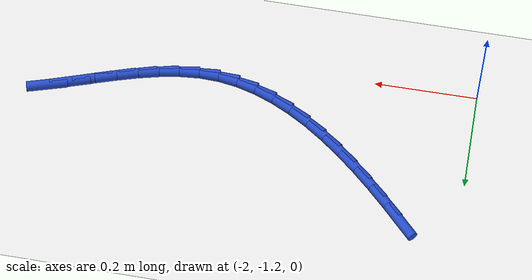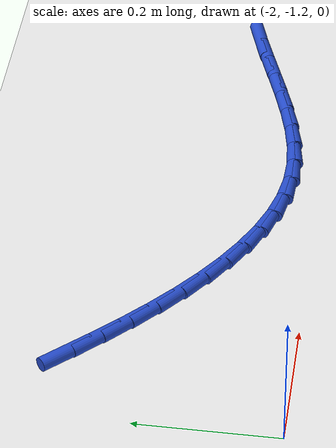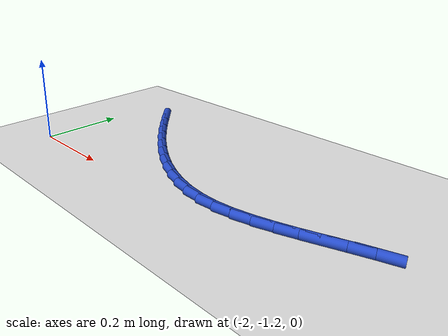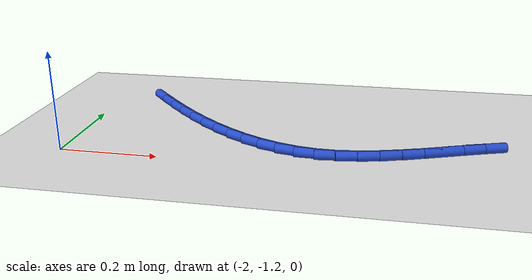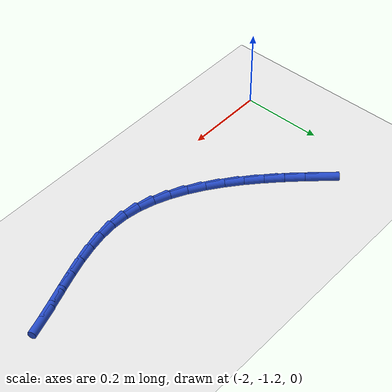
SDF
<sdf version="1.6">
 <world name="default">
  <model name="ground_plane">
   <static>1</static>
   <link name="link">
    <collision name="collision">
     <geometry><plane><normal>0 0 1</normal><size>100 100</size></plane></geometry>
     <surface><friction><ode><mu>100</mu><mu2>50</mu2></ode></friction></surface>
    </collision>
    <visual name="visual">
     <cast_shadows>0</cast_shadows>
     <geometry><plane><normal>0 0 1</normal><size>100 100</size></plane></geometry>
     <material>
      <script><uri>file://media/materials/scripts/gazebo.material</uri><name>Gazebo/WhiteGlow</name></script>
     </material>
    </visual>
   </link>
  </model>
  <model name="line">
   <link name="link_100">
    <pose>-1.8908189197244087 -0.8976447744286477 0.01 0 1.57 -0.8189023400713871</pose>
    <collision name="collision">
     <geometry><cylinder><radius>0.01</radius><length>0.08</length></cylinder></geometry>
    </collision>
    <visual name="visual">
     <material>
      <script><name>Gazebo/Blue</name><uri>file://media/materials/scripts/gazebo.material</uri></script>
     </material>
     <geometry><cylinder><radius>0.01</radius><length>0.08</length></cylinder></geometry>
    </visual>
   </link>
   <link name="link_101">
    <pose>-1.8580120726669724 -0.9327270418444495 0.01 0 1.57 -0.79292820354876</pose>
    <collision name="collision">
     <geometry><cylinder><radius>0.01</radius><length>0.08</length></cylinder></geometry>
    </collision>
    <visual name="visual">
     <material>
      <script><name>Gazebo/Blue</name><uri>file://media/materials/scripts/gazebo.material</uri></script>
     </material>
     <geometry><cylinder><radius>0.01</radius><length>0.08</length></cylinder></geometry>
    </visual>
   </link>
   <link name="link_102">
    <pose>-1.8246435972108055 -0.966601871659604 0.01 0 1.57 -0.7606506586651425</pose>
    <collision name="collision">
     <geometry><cylinder><radius>0.01</radius><length>0.08</length></cylinder></geometry>
    </collision>
    <visual name="visual">
     <material>
      <script><name>Gazebo/Blue</name><uri>file://media/materials/scripts/gazebo.material</uri></script>
     </material>
     <geometry><cylinder><radius>0.01</radius><length>0.08</length></cylinder></geometry>
    </visual>
   </link>
   <link name="link_103">
    <pose>-1.7907115147757082 -0.998894717705953 0.01 0 1.57 -0.7213013544961617</pose>
    <collision name="collision">
     <geometry><cylinder><radius>0.01</radius><length>0.08</length></cylinder></geometry>
    </collision>
    <visual name="visual">
     <material>
      <script><name>Gazebo/Blue</name><uri>file://media/materials/scripts/gazebo.material</uri></script>
     </material>
     <geometry><cylinder><radius>0.01</radius><length>0.08</length></cylinder></geometry>
    </visual>
   </link>
   <link name="link_104">
    <pose>-1.7562138467814827 -1.0292310338153376 0.01 0 1.57 -0.673924061023795</pose>
    <collision name="collision">
     <geometry><cylinder><radius>0.01</radius><length>0.08</length></cylinder></geometry>
    </collision>
    <visual name="visual">
     <material>
      <script><name>Gazebo/Blue</name><uri>file://media/materials/scripts/gazebo.material</uri></script>
     </material>
     <geometry><cylinder><radius>0.01</radius><length>0.08</length></cylinder></geometry>
    </visual>
   </link>
   <link name="link_105">
    <pose>-1.7211486146479302 -1.057236273819599 0.01 0 1.57 -0.6173858830825957</pose>
    <collision name="collision">
     <geometry><cylinder><radius>0.01</radius><length>0.08</length></cylinder></geometry>
    </collision>
    <visual name="visual">
     <material>
      <script><name>Gazebo/Blue</name><uri>file://media/materials/scripts/gazebo.material</uri></script>
     </material>
     <geometry><cylinder><radius>0.01</radius><length>0.08</length></cylinder></geometry>
    </visual>
   </link>
   <link name="link_106">
    <pose>-1.6855138397948524 -1.0825358915505798 0.01 0 1.57 -0.5504250596373631</pose>
    <collision name="collision">
     <geometry><cylinder><radius>0.01</radius><length>0.08</length></cylinder></geometry>
    </collision>
    <visual name="visual">
     <material>
      <script><name>Gazebo/Blue</name><uri>file://media/materials/scripts/gazebo.material</uri></script>
     </material>
     <geometry><cylinder><radius>0.01</radius><length>0.08</length></cylinder></geometry>
    </visual>
   </link>
   <link name="link_107">
    <pose>-1.6493075436420512 -1.1047553408401196 0.01 0 1.57 -0.4717674283141545</pose>
    <collision name="collision">
     <geometry><cylinder><radius>0.01</radius><length>0.08</length></cylinder></geometry>
    </collision>
    <visual name="visual">
     <material>
      <script><name>Gazebo/Blue</name><uri>file://media/materials/scripts/gazebo.material</uri></script>
     </material>
     <geometry><cylinder><radius>0.01</radius><length>0.08</length></cylinder></geometry>
    </visual>
   </link>
   <link name="link_108">
    <pose>-1.612527747609328 -1.1235200755200605 0.01 0 1.57 -0.3803532274012583</pose>
    <collision name="collision">
     <geometry><cylinder><radius>0.01</radius><length>0.08</length></cylinder></geometry>
    </collision>
    <visual name="visual">
     <material>
      <script><name>Gazebo/Blue</name><uri>file://media/materials/scripts/gazebo.material</uri></script>
     </material>
     <geometry><cylinder><radius>0.01</radius><length>0.08</length></cylinder></geometry>
    </visual>
   </link>
   <link name="link_109">
    <pose>-1.5751724731164853 -1.1384555494222435 0.01 0 1.57 -0.27570797864868085</pose>
    <collision name="collision">
     <geometry><cylinder><radius>0.01</radius><length>0.08</length></cylinder></geometry>
    </collision>
    <visual name="visual">
     <material>
      <script><name>Gazebo/Blue</name><uri>file://media/materials/scripts/gazebo.material</uri></script>
     </material>
     <geometry><cylinder><radius>0.01</radius><length>0.08</length></cylinder></geometry>
    </visual>
   </link>
   <link name="link_110">
    <pose>-1.5372397415833237 -1.1491872163785104 0.01 0 1.57 -0.15843668942373926</pose>
    <collision name="collision">
     <geometry><cylinder><radius>0.01</radius><length>0.08</length></cylinder></geometry>
    </collision>
    <visual name="visual">
     <material>
      <script><name>Gazebo/Blue</name><uri>file://media/materials/scripts/gazebo.material</uri></script>
     </material>
     <geometry><cylinder><radius>0.01</radius><length>0.08</length></cylinder></geometry>
    </visual>
   </link>
   <link name="link_111">
    <pose>-1.498727574429644 -1.1553405302207018 0.01 0 1.57 -0.031056524239450163</pose>
    <collision name="collision">
     <geometry><cylinder><radius>0.01</radius><length>0.08</length></cylinder></geometry>
    </collision>
    <visual name="visual">
     <material>
      <script><name>Gazebo/Blue</name><uri>file://media/materials/scripts/gazebo.material</uri></script>
     </material>
     <geometry><cylinder><radius>0.01</radius><length>0.08</length></cylinder></geometry>
    </visual>
   </link>
   <link name="link_112">
    <pose>-1.459634315029854 -1.1565550214660114 0.01 0 1.57 0.08974247051243228</pose>
    <collision name="collision">
     <geometry><cylinder><radius>0.01</radius><length>0.08</length></cylinder></geometry>
    </collision>
    <visual name="visual">
     <material>
      <script><name>Gazebo/Blue</name><uri>file://media/materials/scripts/gazebo.material</uri></script>
     </material>
     <geometry><cylinder><radius>0.01</radius><length>0.08</length></cylinder></geometry>
    </visual>
   </link>
   <link name="link_113">
    <pose>-1.4199701004233045 -1.1529858700698494 0.01 0 1.57 0.18549422445891245</pose>
    <collision name="collision">
     <geometry><cylinder><radius>0.01</radius><length>0.08</length></cylinder></geometry>
    </collision>
    <visual name="visual">
     <material>
      <script><name>Gazebo/Blue</name><uri>file://media/materials/scripts/gazebo.material</uri></script>
     </material>
     <geometry><cylinder><radius>0.01</radius><length>0.08</length></cylinder></geometry>
    </visual>
   </link>
   <link name="link_114">
    <pose>-1.3797599827891418 -1.1454403843540515 0.01 0 1.57 0.2562727521272706</pose>
    <collision name="collision">
     <geometry><cylinder><radius>0.01</radius><length>0.08</length></cylinder></geometry>
    </collision>
    <visual name="visual">
     <material>
      <script><name>Gazebo/Blue</name><uri>file://media/materials/scripts/gazebo.material</uri></script>
     </material>
     <geometry><cylinder><radius>0.01</radius><length>0.08</length></cylinder></geometry>
    </visual>
   </link>
   <link name="link_115">
    <pose>-1.3390299713665206 -1.1347677177714794 0.01 0 1.57 0.304391936297536</pose>
    <collision name="collision">
     <geometry><cylinder><radius>0.01</radius><length>0.08</length></cylinder></geometry>
    </collision>
    <visual name="visual">
     <material>
      <script><name>Gazebo/Blue</name><uri>file://media/materials/scripts/gazebo.material</uri></script>
     </material>
     <geometry><cylinder><radius>0.01</radius><length>0.08</length></cylinder></geometry>
    </visual>
   </link>
   <link name="link_116">
    <pose>-1.2978060753945924 -1.1218170237749934 0.01 0 1.57 0.33212581449939</pose>
    <collision name="collision">
     <geometry><cylinder><radius>0.01</radius><length>0.08</length></cylinder></geometry>
    </collision>
    <visual name="visual">
     <material>
      <script><name>Gazebo/Blue</name><uri>file://media/materials/scripts/gazebo.material</uri></script>
     </material>
     <geometry><cylinder><radius>0.01</radius><length>0.08</length></cylinder></geometry>
    </visual>
   </link>
   <link name="link_117">
    <pose>-1.256114304112513 -1.1074374558174567 0.01 0 1.57 0.3411611337330915</pose>
    <collision name="collision">
     <geometry><cylinder><radius>0.01</radius><length>0.08</length></cylinder></geometry>
    </collision>
    <visual name="visual">
     <material>
      <script><name>Gazebo/Blue</name><uri>file://media/materials/scripts/gazebo.material</uri></script>
     </material>
     <geometry><cylinder><radius>0.01</radius><length>0.08</length></cylinder></geometry>
    </visual>
   </link>
   <link name="link_118">
    <pose>-1.213980666759435 -1.0924781673517296 0.01 0 1.57 0.33242943835764477</pose>
    <collision name="collision">
     <geometry><cylinder><radius>0.01</radius><length>0.08</length></cylinder></geometry>
    </collision>
    <visual name="visual">
     <material>
      <script><name>Gazebo/Blue</name><uri>file://media/materials/scripts/gazebo.material</uri></script>
     </material>
     <geometry><cylinder><radius>0.01</radius><length>0.08</length></cylinder></geometry>
    </visual>
   </link>
   <link name="link_119">
    <pose>-1.171431172574512 -1.0777883118306744 0.01 0 1.57 0.30612189907258974</pose>
    <collision name="collision">
     <geometry><cylinder><radius>0.01</radius><length>0.08</length></cylinder></geometry>
    </collision>
    <visual name="visual">
     <material>
      <script><name>Gazebo/Blue</name><uri>file://media/materials/scripts/gazebo.material</uri></script>
     </material>
     <geometry><cylinder><radius>0.01</radius><length>0.08</length></cylinder></geometry>
    </visual>
   </link>
  </model>
 </world>
</sdf>
